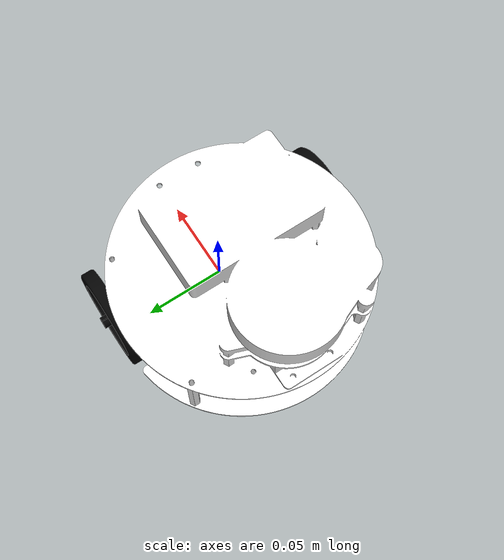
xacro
<?xml version="1.0"?>
<robot name="lightrover" xmlns:xacro="http://ros.org/wiki/xacro">

  <xacro:include filename="$(find lightrover_description)/urdf/common.xacro"/>
  <xacro:include filename="$(find lightrover_description)/urdf/base/base_urdf.xacro"/>
  <xacro:include filename="$(find lightrover_description)/urdf/caster/caster_urdf.xacro"/>
  <xacro:include filename="$(find lightrover_description)/urdf/wheel/wheel_urdf.xacro"/>
  <xacro:include filename="$(find lightrover_description)/urdf/lidar/lidar_urdf.xacro"/>

  <!-- =============== Link & Joint =============== -->
  <!-- Base -->
  <link name="base_footprint"/>
  <xacro:base parent="base_footprint">
    <origin xyz="0 0 0.024"/>
  </xacro:base>

  <!-- Caster -->
  <xacro:caster parent="base_link">
    <origin xyz="-0.078 0 -0.014"/>
  </xacro:caster>

  <!-- Wheel -->
  <!-- Right Wheel -->
  <xacro:wheel prefix="right" parent="base_link">
    <origin xyz="0 -0.072 0.006"/>
    <axis xyz="0 1 0"/>
  </xacro:wheel>
  <!-- Left Wheel -->
  <xacro:wheel prefix="left" parent="base_link">
    <origin xyz="0 0.072 0.006" rpy="0 0 ${M_PI}"/>
    <axis xyz="0 -1 0"/>
  </xacro:wheel>

  <!-- Sensors -->
  <!-- Lidar -->
  <xacro:lidar prefix="center" parent="base_link">
    <origin xyz="-0.07 0 0.086" rpy="0 0 -1.5708"/>
  </xacro:lidar>

  <!-- ===============  Transmission =============== -->
  <xacro:wheel_trans prefix="right"/>
  <xacro:wheel_trans prefix="left"/>

  <!-- =============== ros2_control =============== -->
  <!-- ROS2 control 定義：GazeboSystem を使って2輪を速度制御 -->
  <ros2_control name="GazeboSystem" type="system">
    <hardware>
      <plugin>gazebo_ros2_control/GazeboSystem</plugin>
    </hardware>

    <!-- 右車輪 -->
    <joint name="right_wheel_joint">
      <command_interface name="velocity"/>
      <state_interface   name="position"/>
      <state_interface   name="velocity"/>
    </joint>

    <!-- 左車輪 -->
    <joint name="left_wheel_joint">
      <command_interface name="velocity"/>
      <state_interface   name="position"/>
      <state_interface   name="velocity"/>
    </joint>
  </ros2_control>

  <!-- =============== Gazebo =============== -->
  <gazebo>
    <!-- ROS2 用の ros2_control プラグイン -->
    <plugin name="gazebo_ros2_control" filename="libgazebo_ros2_control.so">
      <!-- コントローラ設定ファイル（xacro の $(find ...) は使えます） -->
      <parameters>$(find lightrover_description)/config/lightrover_controllers.yaml</parameters>
    </plugin>
  </gazebo>

  <!-- Base -->
  <xacro:base_gazebo/>

  <!-- Wheel -->
  <xacro:wheel_gazebo prefix="right"/>
  <xacro:wheel_gazebo prefix="left"/>

  <!-- LiDAR -->
  <xacro:lidar_gazebo prefix="center"
           min_rad="-${M_PI}" max_rad="${M_PI}"
           min_range="0.10" max_range="8.0"/>

</robot>

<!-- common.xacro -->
<robot xmlns:xacro="http://ros.org/wiki/xacro">
  <xacro:property name="M_PI" value="3.14159274"/>

</robot>

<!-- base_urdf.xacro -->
<robot xmlns:xacro="http://ros.org/wiki/xacro">

  <xacro:include filename="$(find lightrover_description)/urdf/base/base_gazebo.xacro"/>

  <xacro:macro name="base" params="parent *joint_origin">
    <joint name="base_joint" type="fixed">
      <xacro:insert_block name="joint_origin"/>
      <parent link="${parent}"/>
      <child link="base_link"/>
    </joint>

    <link name="base_link">
      <visual>
        <geometry>
          <mesh filename="package://lightrover_description/meshes/base_link.dae"/>
        </geometry>
      </visual>
      <collision>
				<origin xyz="-0.025 0.0 0.04" rpy="0.0 0.0 0.0"/>
        <geometry>
          <cylinder radius="0.075" length="0.08"/>
        </geometry>
      </collision>
      <inertial>
        <origin xyz="-0.025 0.0 0.024" rpy="0.0 0.0 0.0"/>
        <mass value="0.0020"/>
        <inertia ixx="8.0206480e-4" ixy="3.2953465e-5" ixz="3.1434721e-5" iyy="9.0126446e-4" iyz="-1.2433875e-4" izz="6.4944281e-4"/>
      </inertial>

    </link>

  </xacro:macro>
</robot>

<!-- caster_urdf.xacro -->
<robot xmlns:xacro="http://ros.org/wiki/xacro">

  <xacro:include filename="$(find lightrover_description)/urdf/caster/caster_gazebo.xacro"/>

  <xacro:macro name="caster" params="parent *joint_origin">
    <joint name="caster_joint" type="fixed">
      <xacro:insert_block name="joint_origin"/>
      <parent link="${parent}"/>
      <child link="caster_link"/>
    </joint>

    <link name="caster_link">
      <collision>
        <geometry>
          <sphere radius="0.01"/>
        </geometry>
      </collision>
      <inertial>
        <origin xyz="0.0 0.0 0.0" rpy="0.0 0.0 0.0"/>
        <mass value="0.05"/>
        <inertia ixx="0.000001" ixy="0.0" ixz="0.0" iyy="0.000001" iyz="0.0" izz="0.000001"/>
      </inertial>

    </link>

  </xacro:macro>
</robot>

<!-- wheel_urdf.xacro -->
<robot xmlns:xacro="http://ros.org/wiki/xacro">

  <xacro:include filename="$(find lightrover_description)/urdf/common.xacro"/>
  <xacro:include filename="$(find lightrover_description)/urdf/wheel/wheel_transmission.xacro"/>
  <xacro:include filename="$(find lightrover_description)/urdf/wheel/wheel_gazebo.xacro"/>

  <xacro:property name="wheel_radius" value="0.03"/>
  <xacro:property name="wheel_length" value="0.005"/>
  <xacro:property name="wheel_mass" value="0.0135"/>

  <xacro:macro name="wheel" params="prefix parent *origin *axis">
    <joint name="${prefix}_wheel_joint" type="continuous">
      <parent link="${parent}"/>
      <child link="${prefix}_wheel_link"/>
      <xacro:insert_block name="origin"/>
      <xacro:insert_block name="axis"/>
    </joint>

    <link name="${prefix}_wheel_link">
      <visual>
        <geometry>
          <mesh filename="package://lightrover_description/meshes/wheel.dae"/>
        </geometry>
      </visual>
      <collision>
        <origin xyz="0 0 0" rpy="-${M_PI/2} 0 0"/>
        <geometry>
          <cylinder radius="${wheel_radius}" length="${wheel_length}"/>
        </geometry>
      </collision>
      <inertial>
        <origin xyz="0 0 0" rpy="-${M_PI/2} 0 0"/>
				<mass value="2.0"/>
        <inertia ixx="7.0238032e-6" ixy="0.0" ixz="-8.4978788e-11" iyy="3.5665783e-6" iyz="-2.2592014e-12" izz="3.5673196e-6"/>
      </inertial>
    </link>
  </xacro:macro>

</robot>

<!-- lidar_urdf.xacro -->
<robot xmlns:xacro="http://ros.org/wiki/xacro">

  <xacro:include filename="$(find lightrover_description)/urdf/common.xacro"/>
  <xacro:include filename="$(find lightrover_description)/urdf/lidar/lidar_gazebo.xacro"/>

  <xacro:macro name="lidar" params="prefix parent *joint_origin">
		<joint name="${prefix}_lidar_joint" type="fixed">
	  	<xacro:insert_block name="joint_origin"/>
	  	<parent link="${parent}"/>
	  	<child link="laser_frame"/>
		</joint>

		<link name="laser_frame"/>

  </xacro:macro>

</robot>
